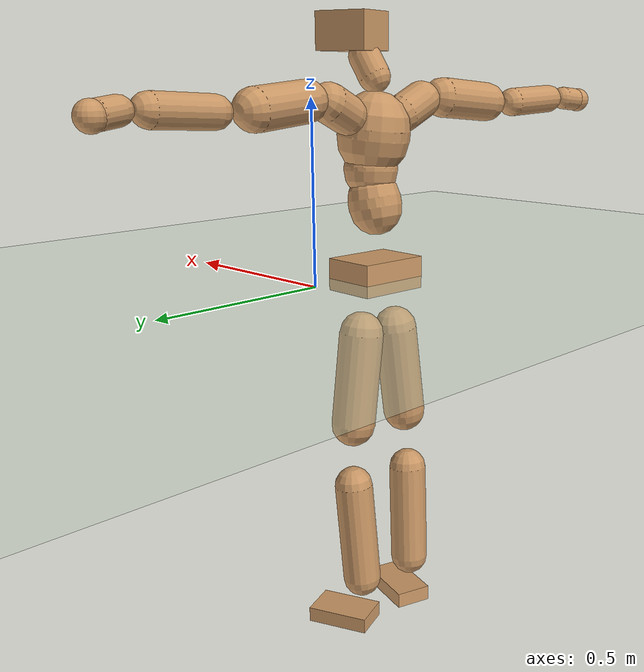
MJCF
<mujoco model="humanoid">
  <compiler coordinate="local" angle="radian"/>
  <default>
    <joint damping="0.0" armature="0.01" stiffness="0.0" limited="true"/>
    <geom conaffinity="1" condim="3" contype="7" margin="0.001" rgba="0.8 0.6 .4 1"/>
  </default>
  <asset>
    <texture type="skybox" builtin="gradient" rgb1=".4 .5 .6" rgb2="0 0 0" width="100" height="100"/>
    <texture builtin="flat" height="1278" mark="cross" markrgb="1 1 1" name="texgeom" random="0.01" rgb1="0.8 0.6 0.4" rgb2="0.8 0.6 0.4" type="cube" width="127"/>
    <texture builtin="checker" height="100" name="texplane" rgb1="0 0 0" rgb2="0.8 0.8 0.8" type="2d" width="100"/>
    <material name="MatPlane" reflectance="0.5" shininess="1" specular="1" texrepeat="60 60" texture="texplane"/>
    <material name="geom" texture="texgeom" texuniform="true"/>
  </asset>
  <worldbody>
    <light cutoff="100" diffuse="1 1 1" dir="-0 0 -1.3" directional="true" exponent="1" pos="0 0 1.3" specular=".1 .1 .1"/>
    <geom conaffinity="1" condim="3" name="floor" pos="0 0 0" rgba="0.8 0.9 0.8 1" size="100 100 .2" type="plane" material="MatPlane"/>
    <body name="Pelvis" pos="-0.0016 -0.2171 0.0186">
      <freejoint name="Pelvis"/>
      <geom type="box" contype="1" conaffinity="1" density="500" pos="-0.0127 0.0005 -0.0088" size="0.0791 0.1052 0.0456" quat="0.9998 0.0000 0.0000 -0.0180" name="Pelvis"/>
      <body name="L_Hip" pos="-0.0237 0.0576 -0.0837">
        <joint name="L_Hip_x" type="hinge" pos="0 0 0" axis="1 0 0" stiffness="800" damping="80" armature="0.02" range="-180.0000 180.0000"/>
        <joint name="L_Hip_y" type="hinge" pos="0 0 0" axis="0 1 0" stiffness="800" damping="80" armature="0.02" range="-180.0000 180.0000"/>
        <joint name="L_Hip_z" type="hinge" pos="0 0 0" axis="0 0 1" stiffness="800" damping="80" armature="0.02" range="-180.0000 180.0000"/>
        <geom type="capsule" contype="1" conaffinity="1" density="500" fromto="0.0012 0.0107 -0.0888 0.0048 0.0427 -0.3550" size="0.0629" name="L_Hip"/>
        <body name="L_Knee" pos="0.006 0.0534 -0.4438">
          <joint name="L_Knee_x" type="hinge" pos="0 0 0" axis="1 0 0" stiffness="800" damping="80" armature="0.02" range="-180.0000 180.0000"/>
          <joint name="L_Knee_y" type="hinge" pos="0 0 0" axis="0 1 0" stiffness="800" damping="80" armature="0.02" range="-180.0000 180.0000"/>
          <joint name="L_Knee_z" type="hinge" pos="0 0 0" axis="0 0 1" stiffness="800" damping="80" armature="0.02" range="-180.0000 180.0000"/>
          <geom type="capsule" contype="1" conaffinity="1" density="500" fromto="-0.0076 -0.0029 -0.0977 -0.0305 -0.0117 -0.3907" size="0.0554" name="L_Knee"/>
          <body name="L_Ankle" pos="-0.0381 -0.0146 -0.4883">
            <joint name="L_Ankle_x" type="hinge" pos="0 0 0" axis="1 0 0" stiffness="800" damping="80" armature="0.02" range="-180.0000 180.0000"/>
            <joint name="L_Ankle_y" type="hinge" pos="0 0 0" axis="0 1 0" stiffness="800" damping="80" armature="0.02" range="-180.0000 180.0000"/>
            <joint name="L_Ankle_z" type="hinge" pos="0 0 0" axis="0 0 1" stiffness="800" damping="80" armature="0.02" range="-180.0000 180.0000"/>
            <geom type="box" contype="1" conaffinity="1" density="500" pos="0.0630 0.0248 -0.0333" size="0.0912 0.0558 0.0218" quat="0.9824 0.0000 0.0000 0.1867" name="L_Ankle"/>
            <body name="L_Toe" pos="0.1259 0.0496 -0.0665">
              <joint name="L_Toe_x" type="hinge" pos="0 0 0" axis="1 0 0" stiffness="500" damping="50" armature="0.02" range="-180.0000 180.0000"/>
              <joint name="L_Toe_y" type="hinge" pos="0 0 0" axis="0 1 0" stiffness="500" damping="50" armature="0.02" range="-180.0000 180.0000"/>
              <joint name="L_Toe_z" type="hinge" pos="0 0 0" axis="0 0 1" stiffness="500" damping="50" armature="0.02" range="-180.0000 180.0000"/>
              <geom type="box" contype="1" conaffinity="1" density="500" pos="0.0000 0.0000 0.0341" size="0.0011 0.0026 0.0011" quat="0.9817 0.0000 0.0000 0.1907" name="L_Toe"/>
            </body>
          </body>
        </body>
      </body>
      <body name="R_Hip" pos="-0.0201 -0.0603 -0.0923">
        <joint name="R_Hip_x" type="hinge" pos="0 0 0" axis="1 0 0" stiffness="800" damping="80" armature="0.02" range="-180.0000 180.0000"/>
        <joint name="R_Hip_y" type="hinge" pos="0 0 0" axis="0 1 0" stiffness="800" damping="80" armature="0.02" range="-180.0000 180.0000"/>
        <joint name="R_Hip_z" type="hinge" pos="0 0 0" axis="0 0 1" stiffness="800" damping="80" armature="0.02" range="-180.0000 180.0000"/>
        <geom type="capsule" contype="1" conaffinity="1" density="500" fromto="-0.0019 -0.0108 -0.0881 -0.0076 -0.0433 -0.3525" size="0.062" name="R_Hip"/>
        <body name="R_Knee" pos="-0.0095 -0.0541 -0.4406">
          <joint name="R_Knee_x" type="hinge" pos="0 0 0" axis="1 0 0" stiffness="800" damping="80" armature="0.02" range="-180.0000 180.0000"/>
          <joint name="R_Knee_y" type="hinge" pos="0 0 0" axis="0 1 0" stiffness="800" damping="80" armature="0.02" range="-180.0000 180.0000"/>
          <joint name="R_Knee_z" type="hinge" pos="0 0 0" axis="0 0 1" stiffness="800" damping="80" armature="0.02" range="-180.0000 180.0000"/>
          <geom type="capsule" contype="1" conaffinity="1" density="500" fromto="-0.0069 0.0041 -0.0964 -0.0276 0.0165 -0.3857" size="0.0553" name="R_Knee"/>
          <body name="R_Ankle" pos="-0.0345 0.0206 -0.4821">
            <joint name="R_Ankle_x" type="hinge" pos="0 0 0" axis="1 0 0" stiffness="800" damping="80" armature="0.02" range="-180.0000 180.0000"/>
            <joint name="R_Ankle_y" type="hinge" pos="0 0 0" axis="0 1 0" stiffness="800" damping="80" armature="0.02" range="-180.0000 180.0000"/>
            <joint name="R_Ankle_z" type="hinge" pos="0 0 0" axis="0 0 1" stiffness="800" damping="80" armature="0.02" range="-180.0000 180.0000"/>
            <geom type="box" contype="1" conaffinity="1" density="500" pos="0.0676 -0.0202 -0.0353" size="0.095 0.0535 0.0226" quat="0.9894 0.0000 0.0000 -0.1450" name="R_Ankle"/>
            <body name="R_Toe" pos="0.1352 -0.0405 -0.0706">
              <joint name="R_Toe_x" type="hinge" pos="0 0 0" axis="1 0 0" stiffness="500" damping="50" armature="0.02" range="-180.0000 180.0000"/>
              <joint name="R_Toe_y" type="hinge" pos="0 0 0" axis="0 1 0" stiffness="500" damping="50" armature="0.02" range="-180.0000 180.0000"/>
              <joint name="R_Toe_z" type="hinge" pos="0 0 0" axis="0 0 1" stiffness="500" damping="50" armature="0.02" range="-180.0000 180.0000"/>
              <geom type="box" contype="1" conaffinity="1" density="500" pos="0.0000 0.0000 0.0361" size="0.0011 0.0025 0.0012" quat="0.9907 0.0000 0.0000 -0.1363" name="R_Toe"/>
            </body>
          </body>
        </body>
      </body>
      <body name="Torso" pos="-0.0324 0.0054 0.1233">
        <joint name="Torso_x" type="hinge" pos="0 0 0" axis="1 0 0" stiffness="1000" damping="100" armature="0.02" range="-180.0000 180.0000"/>
        <joint name="Torso_y" type="hinge" pos="0 0 0" axis="0 1 0" stiffness="1000" damping="100" armature="0.02" range="-180.0000 180.0000"/>
        <joint name="Torso_z" type="hinge" pos="0 0 0" axis="0 0 1" stiffness="1000" damping="100" armature="0.02" range="-180.0000 180.0000"/>
        <geom type="capsule" contype="1" conaffinity="1" density="500" fromto="0.0174 0.0018 0.0807 0.0116 0.0012 0.0538" size="0.0745" name="Torso"/>
        <body name="Spine" pos="0.029 0.003 0.1345">
          <joint name="Spine_x" type="hinge" pos="0 0 0" axis="1 0 0" stiffness="1000" damping="100" armature="0.02" range="-180.0000 180.0000"/>
          <joint name="Spine_y" type="hinge" pos="0 0 0" axis="0 1 0" stiffness="1000" damping="100" armature="0.02" range="-180.0000 180.0000"/>
          <joint name="Spine_z" type="hinge" pos="0 0 0" axis="0 0 1" stiffness="1000" damping="100" armature="0.02" range="-180.0000 180.0000"/>
          <geom type="capsule" contype="1" conaffinity="1" density="500" fromto="0.0009 -0.0016 0.0317 0.0006 -0.0010 0.0212" size="0.0755" name="Spine"/>
          <body name="Chest" pos="0.0016 -0.0026 0.0529">
            <joint name="Chest_x" type="hinge" pos="0 0 0" axis="1 0 0" stiffness="1000" damping="100" armature="0.02" range="-180.0000 180.0000"/>
            <joint name="Chest_y" type="hinge" pos="0 0 0" axis="0 1 0" stiffness="1000" damping="100" armature="0.02" range="-180.0000 180.0000"/>
            <joint name="Chest_z" type="hinge" pos="0 0 0" axis="0 0 1" stiffness="1000" damping="100" armature="0.02" range="-180.0000 180.0000"/>
            <geom type="capsule" contype="1" conaffinity="1" density="500" fromto="-0.0085 -0.0047 0.0847 -0.0057 -0.0032 0.0565" size="0.1013" name="Chest"/>
            <body name="Neck" pos="-0.0155 -0.0135 0.2019">
              <joint name="Neck_x" type="hinge" pos="0 0 0" axis="1 0 0" stiffness="500" damping="50" armature="0.02" range="-180.0000 180.0000"/>
              <joint name="Neck_y" type="hinge" pos="0 0 0" axis="0 1 0" stiffness="500" damping="50" armature="0.02" range="-180.0000 180.0000"/>
              <joint name="Neck_z" type="hinge" pos="0 0 0" axis="0 0 1" stiffness="500" damping="50" armature="0.02" range="-180.0000 180.0000"/>
              <geom type="capsule" contype="1" conaffinity="1" density="500" fromto="0.0107 0.0022 0.0182 0.0429 0.0087 0.0729" size="0.0442" name="Neck"/>
              <body name="Head" pos="0.0537 0.0108 0.0912">
                <joint name="Head_x" type="hinge" pos="0 0 0" axis="1 0 0" stiffness="500" damping="50" armature="0.02" range="-180.0000 180.0000"/>
                <joint name="Head_y" type="hinge" pos="0 0 0" axis="0 1 0" stiffness="500" damping="50" armature="0.02" range="-180.0000 180.0000"/>
                <joint name="Head_z" type="hinge" pos="0 0 0" axis="0 0 1" stiffness="500" damping="50" armature="0.02" range="-180.0000 180.0000"/>
                <geom type="box" contype="1" conaffinity="1" density="500" pos="0.0278 0.0064 0.0466" size="0.0782 0.0623 0.0518" quat="0.9936 0.0000 0.0000 0.1129" name="Head"/>
              </body>
            </body>
            <body name="L_Thorax" pos="-0.0114 0.0778 0.1118">
              <joint name="L_Thorax_x" type="hinge" pos="0 0 0" axis="1 0 0" stiffness="500" damping="50" armature="0.02" range="-180.0000 180.0000"/>
              <joint name="L_Thorax_y" type="hinge" pos="0 0 0" axis="0 1 0" stiffness="500" damping="50" armature="0.02" range="-180.0000 180.0000"/>
              <joint name="L_Thorax_z" type="hinge" pos="0 0 0" axis="0 0 1" stiffness="500" damping="50" armature="0.02" range="-180.0000 180.0000"/>
              <geom type="capsule" contype="1" conaffinity="1" density="500" fromto="-0.0037 0.0249 0.0109 -0.0149 0.0997 0.0438" size="0.0537" name="L_Thorax"/>
              <body name="L_Shoulder" pos="-0.0186 0.1247 0.0547">
                <joint name="L_Shoulder_x" type="hinge" pos="0 0 0" axis="1 0 0" stiffness="500" damping="50" armature="0.02" range="-720.0000 720.0000"/>
                <joint name="L_Shoulder_y" type="hinge" pos="0 0 0" axis="0 1 0" stiffness="500" damping="50" armature="0.02" range="-720.0000 720.0000"/>
                <joint name="L_Shoulder_z" type="hinge" pos="0 0 0" axis="0 0 1" stiffness="500" damping="50" armature="0.02" range="-720.0000 720.0000"/>
                <geom type="capsule" contype="1" conaffinity="1" density="500" fromto="-0.0050 0.0589 -0.0051 -0.0200 0.2356 -0.0205" size="0.0553" name="L_Shoulder"/>
                <body name="L_Elbow" pos="-0.025 0.2945 -0.0256">
                  <joint name="L_Elbow_x" type="hinge" pos="0 0 0" axis="1 0 0" stiffness="500" damping="50" armature="0.02" range="-720.0000 720.0000"/>
                  <joint name="L_Elbow_y" type="hinge" pos="0 0 0" axis="0 1 0" stiffness="500" damping="50" armature="0.02" range="-720.0000 720.0000"/>
                  <joint name="L_Elbow_z" type="hinge" pos="0 0 0" axis="0 0 1" stiffness="500" damping="50" armature="0.02" range="-720.0000 720.0000"/>
                  <geom type="capsule" contype="1" conaffinity="1" density="500" fromto="-0.0018 0.0591 0.0032 -0.0071 0.2363 0.0128" size="0.0416" name="L_Elbow"/>
                  <body name="L_Wrist" pos="-0.0089 0.2953 0.016">
                    <joint name="L_Wrist_x" type="hinge" pos="0 0 0" axis="1 0 0" stiffness="300" damping="30" armature="0.02" range="-180.0000 180.0000"/>
                    <joint name="L_Wrist_y" type="hinge" pos="0 0 0" axis="0 1 0" stiffness="300" damping="30" armature="0.02" range="-180.0000 180.0000"/>
                    <joint name="L_Wrist_z" type="hinge" pos="0 0 0" axis="0 0 1" stiffness="300" damping="30" armature="0.02" range="-180.0000 180.0000"/>
                    <geom type="capsule" contype="1" conaffinity="1" density="500" fromto="-0.0033 0.0178 -0.0022 -0.0134 0.0713 -0.0088" size="0.0344" name="L_Wrist"/>
                    <body name="L_Hand" pos="-0.0167 0.0892 -0.011">
                      <joint name="L_Hand_x" type="hinge" pos="0 0 0" axis="1 0 0" stiffness="300" damping="30" armature="0.02" range="-180.0000 180.0000"/>
                      <joint name="L_Hand_y" type="hinge" pos="0 0 0" axis="0 1 0" stiffness="300" damping="30" armature="0.02" range="-180.0000 180.0000"/>
                      <joint name="L_Hand_z" type="hinge" pos="0 0 0" axis="0 0 1" stiffness="300" damping="30" armature="0.02" range="-180.0000 180.0000"/>
                      <geom type="sphere" contype="1" conaffinity="1" density="500" size="0.0364" pos="0.0000 0.0000 0.0000" name="L_Hand"/>
                    </body>
                  </body>
                </body>
              </body>
            </body>
            <body name="R_Thorax" pos="-0.0158 -0.088 0.1099">
              <joint name="R_Thorax_x" type="hinge" pos="0 0 0" axis="1 0 0" stiffness="500" damping="50" armature="0.02" range="-180.0000 180.0000"/>
              <joint name="R_Thorax_y" type="hinge" pos="0 0 0" axis="0 1 0" stiffness="500" damping="50" armature="0.02" range="-180.0000 180.0000"/>
              <joint name="R_Thorax_z" type="hinge" pos="0 0 0" axis="0 0 1" stiffness="500" damping="50" armature="0.02" range="-180.0000 180.0000"/>
              <geom type="capsule" contype="1" conaffinity="1" density="500" fromto="-0.0014 -0.0231 0.0114 -0.0057 -0.0926 0.0457" size="0.0538" name="R_Thorax"/>
              <body name="R_Shoulder" pos="-0.0071 -0.1157 0.0571">
                <joint name="R_Shoulder_x" type="hinge" pos="0 0 0" axis="1 0 0" stiffness="500" damping="50" armature="0.02" range="-720.0000 720.0000"/>
                <joint name="R_Shoulder_y" type="hinge" pos="0 0 0" axis="0 1 0" stiffness="500" damping="50" armature="0.02" range="-720.0000 720.0000"/>
                <joint name="R_Shoulder_z" type="hinge" pos="0 0 0" axis="0 0 1" stiffness="500" damping="50" armature="0.02" range="-720.0000 720.0000"/>
                <geom type="capsule" contype="1" conaffinity="1" density="500" fromto="-0.0065 -0.0594 -0.0054 -0.0261 -0.2375 -0.0216" size="0.0566" name="R_Shoulder"/>
                <body name="R_Elbow" pos="-0.0326 -0.2969 -0.027">
                  <joint name="R_Elbow_x" type="hinge" pos="0 0 0" axis="1 0 0" stiffness="500" damping="50" armature="0.02" range="-720.0000 720.0000"/>
                  <joint name="R_Elbow_y" type="hinge" pos="0 0 0" axis="0 1 0" stiffness="500" damping="50" armature="0.02" range="-720.0000 720.0000"/>
                  <joint name="R_Elbow_z" type="hinge" pos="0 0 0" axis="0 0 1" stiffness="500" damping="50" armature="0.02" range="-720.0000 720.0000"/>
                  <geom type="capsule" contype="1" conaffinity="1" density="500" fromto="-0.0015 -0.0606 0.0024 -0.0061 -0.2423 0.0096" size="0.0425" name="R_Elbow"/>
                  <body name="R_Wrist" pos="-0.0076 -0.3029 0.012">
                    <joint name="R_Wrist_x" type="hinge" pos="0 0 0" axis="1 0 0" stiffness="300" damping="30" armature="0.02" range="-180.0000 180.0000"/>
                    <joint name="R_Wrist_y" type="hinge" pos="0 0 0" axis="0 1 0" stiffness="300" damping="30" armature="0.02" range="-180.0000 180.0000"/>
                    <joint name="R_Wrist_z" type="hinge" pos="0 0 0" axis="0 0 1" stiffness="300" damping="30" armature="0.02" range="-180.0000 180.0000"/>
                    <geom type="capsule" contype="1" conaffinity="1" density="500" fromto="-0.0022 -0.0182 -0.0018 -0.0089 -0.0728 -0.0071" size="0.035" name="R_Wrist"/>
                    <body name="R_Hand" pos="-0.0111 -0.091 -0.0089">
                      <joint name="R_Hand_x" type="hinge" pos="0 0 0" axis="1 0 0" stiffness="300" damping="30" armature="0.02" range="-180.0000 180.0000"/>
                      <joint name="R_Hand_y" type="hinge" pos="0 0 0" axis="0 1 0" stiffness="300" damping="30" armature="0.02" range="-180.0000 180.0000"/>
                      <joint name="R_Hand_z" type="hinge" pos="0 0 0" axis="0 0 1" stiffness="300" damping="30" armature="0.02" range="-180.0000 180.0000"/>
                      <geom type="sphere" contype="1" conaffinity="1" density="500" size="0.0368" pos="0.0000 0.0000 0.0000" name="R_Hand"/>
                    </body>
                  </body>
                </body>
              </body>
            </body>
          </body>
        </body>
      </body>
    </body>
  </worldbody>
  <actuator>
    <motor name="L_Hip_x" joint="L_Hip_x" gear="500"/>
    <motor name="L_Hip_y" joint="L_Hip_y" gear="500"/>
    <motor name="L_Hip_z" joint="L_Hip_z" gear="500"/>
    <motor name="L_Knee_x" joint="L_Knee_x" gear="500"/>
    <motor name="L_Knee_y" joint="L_Knee_y" gear="500"/>
    <motor name="L_Knee_z" joint="L_Knee_z" gear="500"/>
    <motor name="L_Ankle_x" joint="L_Ankle_x" gear="500"/>
    <motor name="L_Ankle_y" joint="L_Ankle_y" gear="500"/>
    <motor name="L_Ankle_z" joint="L_Ankle_z" gear="500"/>
    <motor name="L_Toe_x" joint="L_Toe_x" gear="500"/>
    <motor name="L_Toe_y" joint="L_Toe_y" gear="500"/>
    <motor name="L_Toe_z" joint="L_Toe_z" gear="500"/>
    <motor name="R_Hip_x" joint="R_Hip_x" gear="500"/>
    <motor name="R_Hip_y" joint="R_Hip_y" gear="500"/>
    <motor name="R_Hip_z" joint="R_Hip_z" gear="500"/>
    <motor name="R_Knee_x" joint="R_Knee_x" gear="500"/>
    <motor name="R_Knee_y" joint="R_Knee_y" gear="500"/>
    <motor name="R_Knee_z" joint="R_Knee_z" gear="500"/>
    <motor name="R_Ankle_x" joint="R_Ankle_x" gear="500"/>
    <motor name="R_Ankle_y" joint="R_Ankle_y" gear="500"/>
    <motor name="R_Ankle_z" joint="R_Ankle_z" gear="500"/>
    <motor name="R_Toe_x" joint="R_Toe_x" gear="500"/>
    <motor name="R_Toe_y" joint="R_Toe_y" gear="500"/>
    <motor name="R_Toe_z" joint="R_Toe_z" gear="500"/>
    <motor name="Torso_x" joint="Torso_x" gear="500"/>
    <motor name="Torso_y" joint="Torso_y" gear="500"/>
    <motor name="Torso_z" joint="Torso_z" gear="500"/>
    <motor name="Spine_x" joint="Spine_x" gear="500"/>
    <motor name="Spine_y" joint="Spine_y" gear="500"/>
    <motor name="Spine_z" joint="Spine_z" gear="500"/>
    <motor name="Chest_x" joint="Chest_x" gear="500"/>
    <motor name="Chest_y" joint="Chest_y" gear="500"/>
    <motor name="Chest_z" joint="Chest_z" gear="500"/>
    <motor name="Neck_x" joint="Neck_x" gear="500"/>
    <motor name="Neck_y" joint="Neck_y" gear="500"/>
    <motor name="Neck_z" joint="Neck_z" gear="500"/>
    <motor name="Head_x" joint="Head_x" gear="500"/>
    <motor name="Head_y" joint="Head_y" gear="500"/>
    <motor name="Head_z" joint="Head_z" gear="500"/>
    <motor name="L_Thorax_x" joint="L_Thorax_x" gear="500"/>
    <motor name="L_Thorax_y" joint="L_Thorax_y" gear="500"/>
    <motor name="L_Thorax_z" joint="L_Thorax_z" gear="500"/>
    <motor name="L_Shoulder_x" joint="L_Shoulder_x" gear="500"/>
    <motor name="L_Shoulder_y" joint="L_Shoulder_y" gear="500"/>
    <motor name="L_Shoulder_z" joint="L_Shoulder_z" gear="500"/>
    <motor name="L_Elbow_x" joint="L_Elbow_x" gear="500"/>
    <motor name="L_Elbow_y" joint="L_Elbow_y" gear="500"/>
    <motor name="L_Elbow_z" joint="L_Elbow_z" gear="500"/>
    <motor name="L_Wrist_x" joint="L_Wrist_x" gear="500"/>
    <motor name="L_Wrist_y" joint="L_Wrist_y" gear="500"/>
    <motor name="L_Wrist_z" joint="L_Wrist_z" gear="500"/>
    <motor name="L_Hand_x" joint="L_Hand_x" gear="500"/>
    <motor name="L_Hand_y" joint="L_Hand_y" gear="500"/>
    <motor name="L_Hand_z" joint="L_Hand_z" gear="500"/>
    <motor name="R_Thorax_x" joint="R_Thorax_x" gear="500"/>
    <motor name="R_Thorax_y" joint="R_Thorax_y" gear="500"/>
    <motor name="R_Thorax_z" joint="R_Thorax_z" gear="500"/>
    <motor name="R_Shoulder_x" joint="R_Shoulder_x" gear="500"/>
    <motor name="R_Shoulder_y" joint="R_Shoulder_y" gear="500"/>
    <motor name="R_Shoulder_z" joint="R_Shoulder_z" gear="500"/>
    <motor name="R_Elbow_x" joint="R_Elbow_x" gear="500"/>
    <motor name="R_Elbow_y" joint="R_Elbow_y" gear="500"/>
    <motor name="R_Elbow_z" joint="R_Elbow_z" gear="500"/>
    <motor name="R_Wrist_x" joint="R_Wrist_x" gear="500"/>
    <motor name="R_Wrist_y" joint="R_Wrist_y" gear="500"/>
    <motor name="R_Wrist_z" joint="R_Wrist_z" gear="500"/>
    <motor name="R_Hand_x" joint="R_Hand_x" gear="500"/>
    <motor name="R_Hand_y" joint="R_Hand_y" gear="500"/>
    <motor name="R_Hand_z" joint="R_Hand_z" gear="500"/>
  </actuator>
  <contact>
    <exclude body1="Torso" body2="Chest"/>
    <exclude body1="Head" body2="Chest"/>
    <exclude body1="R_Knee" body2="R_Toe"/>
    <exclude body1="R_Knee" body2="L_Ankle"/>
    <exclude body1="R_Knee" body2="L_Toe"/>
    <exclude body1="L_Knee" body2="L_Toe"/>
    <exclude body1="L_Knee" body2="R_Ankle"/>
    <exclude body1="L_Knee" body2="R_Toe"/>
    <exclude body1="L_Shoulder" body2="Chest"/>
    <exclude body1="R_Shoulder" body2="Chest"/>
  </contact>
  <sensor/>
  <size njmax="700" nconmax="700"/>
</mujoco>
